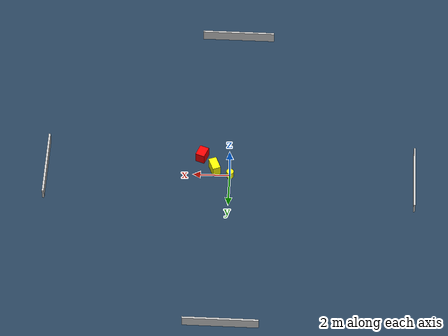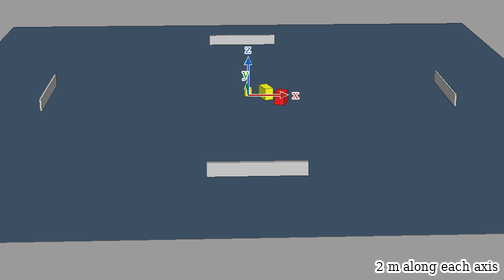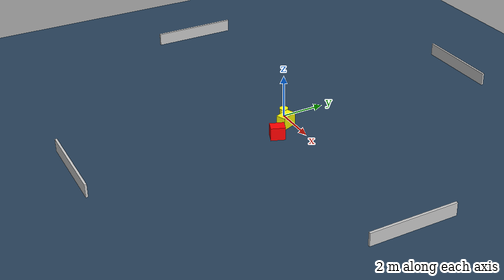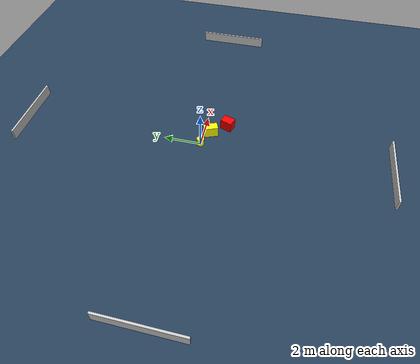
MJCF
<?xml version="1.0" ?>
<mujoco model="generated_environment">
  <option timestep="0.01" integrator="RK4" cone="elliptic"/>
  <default>
    <geom density="1"/>
  </default>
  <asset>
    <texture builtin="gradient" height="3072" name="skybox" rgb1="0.3 0.5 0.7" rgb2="0 0 0" type="skybox" width="512"/>
    <texture builtin="checker" height="300" name="groundplane" rgb1="0.2 0.3 0.4" rgb2="0.1 0.2 0.3" type="2d" width="300"/>
    <material name="groundplane" reflectance="0.2" texrepeat="5 5" texture="groundplane"/>
  </asset>
  <worldbody>
    <light dir="0 0 -1" directional="true" pos="0 0 1.5"/>
    <geom condim="3" friction="0.5 0.005 0.001" material="groundplane" name="floor" pos="0 0 0" size="0 0 0.05" type="plane"/>
    <body name="walls">
      <geom name="wall_1" condim="4" pos="-10.0 0.0 0.3" rgba="0.800000011920929 0.800000011920929 0.800000011920929 1.0" size="0.05 2.0 0.3" type="box"/>
      <geom name="wall_2" condim="4" pos="10.0 0.0 0.3" rgba="0.800000011920929 0.800000011920929 0.800000011920929 1.0" size="0.05 2.0 0.3" type="box"/>
      <geom name="wall_3" condim="4" pos="0.0 -10.0 0.3" rgba="0.800000011920929 0.800000011920929 0.800000011920929 1.0" size="2.0 0.05 0.3" type="box"/>
      <geom name="wall_4" condim="4" pos="0.0 10.0 0.3" rgba="0.800000011920929 0.800000011920929 0.800000011920929 1.0" size="2.0 0.05 0.3" type="box"/>
    </body>
    <body name="robot">
      <joint name="joint_x" type="slide" pos="0 0 0" axis="1 0 0"/>
      <joint name="joint_y" type="slide" pos="0 0 0" axis="0 1 0"/>
      <geom name="robot" type="cylinder" pos="0.0 0.0 0.2" size="0.2 0.2 0.0" mass="5.0" friction="1.0 0.005 0.0001" condim="4" rgba="1.0 1.0 0.0 1.0"/>
    </body>
    <body name="obstacle_1_movable">
      <geom name="obstacle_1_movable" condim="4" pos="0.8644025482192013 -0.37403558219262395 0.3" euler="0 0 292.1549539200115" friction="0.0 0.005 0.001" rgba="1.0 1.0 0.0 1.0" size="0.37917966891393046 0.22065152158935478 0.3" type="box" mass="0.1"/>
      <joint type="free"/>
    </body>
    <body name="obstacle_2_static">
      <geom name="obstacle_2_static" condim="4" pos="1.5774307221886399 -1.194359217225709 0.3" euler="0 0 159.48368264877763" friction="0.0 0.005 0.001" rgba="1.0 0.0 0.0 1.0" size="0.25185436659478866 0.3279705460739941 0.3" type="box"/>
    </body>
  </worldbody>
  <actuator>
    <motor name="actuator_x" joint="joint_x" gear="1" ctrlrange="-1 1"/>
    <motor name="actuator_y" joint="joint_y" gear="1" ctrlrange="-1 1"/>
  </actuator>
</mujoco>
